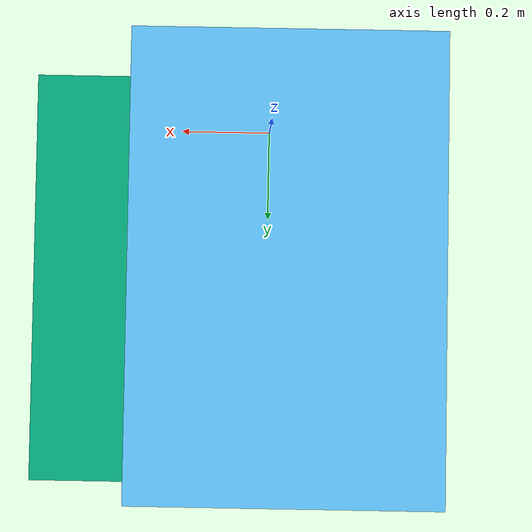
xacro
<?xml version='1.0'?>

<robot name="Bread_Cutter" xmlns:xacro="http://www.ros.org/wiki/xacro">
   <!-- world -->
  <link name="world" />
  <link name='base_link'>
    <pose>0 0 0 0 0 0</pose>

    <inertial>
      <mass value="100.0"/>
      <origin xyz="0.0 0 0" rpy=" 0 0 0"/>
      <inertia
          ixx="0.1" ixy="0" ixz="0"
          iyy="0.1" iyz="0"
          izz="0.1"
      />
    </inertial>

    <collision name='collision'>
      <origin xyz="0 0 0.0" rpy=" 0 0 0"/>
      <geometry>
        <box size="0.5 0.75 1" />
      </geometry>
    </collision>

    <visual name='Bread_Cutter'>
      <origin xyz="0 0 0.0" rpy=" 0 0 0"/>
      <geometry>
       <box size="0.5 0.75 1" />
      </geometry>
    </visual>

  </link>

  <link name='camerabox'>
    <pose>0 0 0 0 0 0</pose>

    <inertial>
      <mass value="100.0"/>
      <origin xyz="0.0 0 0" rpy=" 0 0 0"/>
      <inertia
          ixx="0.1" ixy="0" ixz="0"
          iyy="0.1" iyz="0"
          izz="0.1"
      />
    </inertial>

    <collision name='collision_camera'>
      <origin xyz="0 0 0.0" rpy=" 0 0 0"/>
      <geometry>
        <box size="0.5 0.75 0.2" />
      </geometry>
    </collision>

    <visual name='camera_box'>
      <origin xyz="0 0 0.0" rpy=" 0 0 0"/>
      <geometry>
       <box size="0.2 0.75 0.2" />
      </geometry>
    </visual>

  </link>
  <joint name="bread_cutter_to_world" type="fixed">
    <parent link="world" />
    <child link="base_link" />
    <origin xyz="0 0.37 0.5" rpy="0.0 0.0 0.0"/>
  </joint>

    <joint name="camera_to_bread_cutter" type="fixed">
    <parent link="base_link" />
    <child link="camerabox" />
    <origin xyz="0.35 0 0" rpy="0.0 0.0 0.0"/>
  </joint>
</robot>
